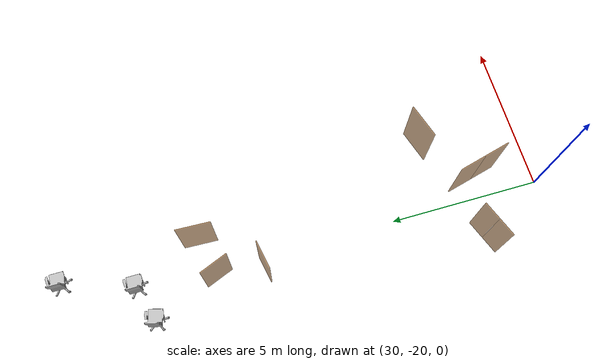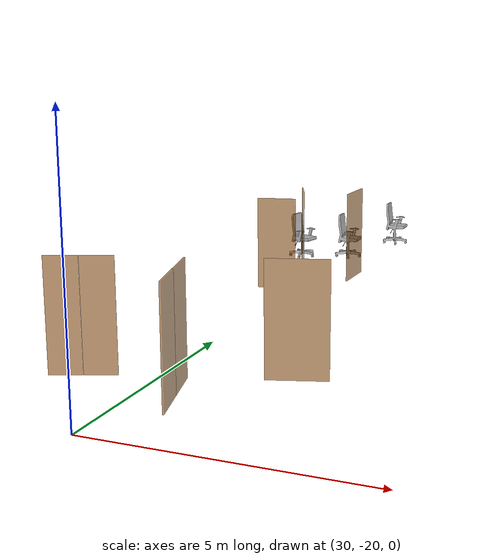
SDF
<sdf version="1.7">
 <world name="world">
  <include><uri>model://sun</uri></include>
  <include>
   <name>OpenRobotics/OfficeChairBlue_167</name>
   <uri>model://OfficeChairBlue</uri>
   <pose>29.051499461333144 -6.829994484467194 0.0 0 0 1.3253</pose>
   <static>True</static>
  </include>
  <include>
   <name>OpenRobotics/OfficeChairBlue_168</name>
   <uri>model://OfficeChairBlue</uri>
   <pose>30.268561291446492 -6.402953516787126 0.0 0 0 1.5708</pose>
   <static>True</static>
  </include>
  <include>
   <name>OpenRobotics/OfficeChairBlue_170</name>
   <uri>model://OfficeChairBlue</uri>
   <pose>31.01590762376081 -4.075565459606238 0.0 0 0 1.5708</pose>
   <static>True</static>
  </include>
  <model name="door_47">
   <pose>31.014774235547492 -8.705801255262191 0.0 0 0 -1.6078000247338753</pose>
   <link name="right">
    <pose>0 0 1.11 0 0 0</pose>
    <visual name="right_visual">
     <geometry><box><size>1.1008895852185248 0.03 2.2</size></box></geometry>
     <material><ambient>0.5 0.25 0 0.6</ambient><diffuse>0.5 0.25 0 0.6</diffuse></material>
    </visual>
    <collision name="right_collision">
     <geometry><box><size>1.1008895852185248 0.03 2.2</size></box></geometry>
     <surface><contact><collide_bitmask>0x02</collide_bitmask></contact></surface>
    </collision>
    <inertial>
     <mass>50.0</mass>
     <inertia><ixx>20.17041666666667</ixx><iyy>25.216491161844235</iyy><izz>5.053574495177565</izz></inertia>
    </inertial>
   </link>
   <joint name="right_joint" type="revolute">
    <parent>world</parent>
    <child>right</child>
    <axis><xyz>0 0 -1</xyz><limit><lower>0</lower><upper>1.57</upper></limit></axis>
    <pose>0.5554447926092624 0 0 0 0 0</pose>
   </joint>
   <plugin name="door" filename="libdoor.so">
    <v_max_door>0.5</v_max_door>
    <a_max_door>0.3</a_max_door>
    <a_nom_door>0.15</a_nom_door>
    <dx_min_door>0.01</dx_min_door>
    <f_max_door>500.0</f_max_door>
    <door name="door_47" type="SwingDoor" left_joint_name="empty_joint" right_joint_name="right_joint"/>
   </plugin>
  </model>
  <model name="door_48">
   <pose>29.74449243715645 -9.028176285329465 0.0 0 0 -1.1899322959066545</pose>
   <link name="right">
    <pose>0 0 1.11 0 0 0</pose>
    <visual name="right_visual">
     <geometry><box><size>0.9622381273252301 0.03 2.2</size></box></geometry>
     <material><ambient>0.5 0.25 0 0.6</ambient><diffuse>0.5 0.25 0 0.6</diffuse></material>
    </visual>
    <collision name="right_collision">
     <geometry><box><size>0.9622381273252301 0.03 2.2</size></box></geometry>
     <surface><contact><collide_bitmask>0x02</collide_bitmask></contact></surface>
    </collision>
    <inertial>
     <mass>50.0</mass>
     <inertia><ixx>20.17041666666667</ixx><iyy>24.024592556993195</iyy><izz>3.861675890326524</izz></inertia>
    </inertial>
   </link>
   <joint name="right_joint" type="revolute">
    <parent>world</parent>
    <child>right</child>
    <axis><xyz>0 0 -1</xyz><limit><lower>0</lower><upper>1.57</upper></limit></axis>
    <pose>0.48611906366261504 0 0 0 0 0</pose>
   </joint>
   <plugin name="door" filename="libdoor.so">
    <v_max_door>0.5</v_max_door>
    <a_max_door>0.3</a_max_door>
    <a_nom_door>0.15</a_nom_door>
    <dx_min_door>0.01</dx_min_door>
    <f_max_door>500.0</f_max_door>
    <door name="door_48" type="SwingDoor" left_joint_name="empty_joint" right_joint_name="right_joint"/>
   </plugin>
  </model>
  <model name="door_50">
   <pose>29.601636244529573 -10.505276793777425 0.0 0 0 -2.9530084478219623</pose>
   <link name="right">
    <pose>0 0 1.11 0 0 0</pose>
    <visual name="right_visual">
     <geometry><box><size>0.9178921724316444 0.03 2.2</size></box></geometry>
     <material><ambient>0.5 0.25 0 0.6</ambient><diffuse>0.5 0.25 0 0.6</diffuse></material>
    </visual>
    <collision name="right_collision">
     <geometry><box><size>0.9178921724316444 0.03 2.2</size></box></geometry>
     <surface><contact><collide_bitmask>0x02</collide_bitmask></contact></surface>
    </collision>
    <inertial>
     <mass>50.0</mass>
     <inertia><ixx>20.17041666666667</ixx><iyy>23.677191834213687</iyy><izz>3.514275167547016</izz></inertia>
    </inertial>
   </link>
   <joint name="right_joint" type="revolute">
    <parent>world</parent>
    <child>right</child>
    <axis><xyz>0 0 -1</xyz><limit><lower>0</lower><upper>1.57</upper></limit></axis>
    <pose>0.46394608621582223 0 0 0 0 0</pose>
   </joint>
   <plugin name="door" filename="libdoor.so">
    <v_max_door>0.5</v_max_door>
    <a_max_door>0.3</a_max_door>
    <a_nom_door>0.15</a_nom_door>
    <dx_min_door>0.01</dx_min_door>
    <f_max_door>500.0</f_max_door>
    <door name="door_50" type="SwingDoor" left_joint_name="empty_joint" right_joint_name="right_joint"/>
   </plugin>
  </model>
  <model name="double_hinged_11">
   <pose>28.69157478698105 -17.64995897956067 0.0 0 0 -2.773488763623743</pose>
   <link name="right">
    <pose>0.31763427600919436 0 1.11 0 0 0</pose>
    <visual name="right_visual">
     <geometry><box><size>0.6252685520183887 0.03 2.2</size></box></geometry>
     <material><ambient>0.5 0.25 0 0.6</ambient><diffuse>0.5 0.25 0 0.6</diffuse></material>
    </visual>
    <collision name="right_collision">
     <geometry><box><size>0.6252685520183887 0.03 2.2</size></box></geometry>
     <surface><contact><collide_bitmask>0x02</collide_bitmask></contact></surface>
    </collision>
    <inertial>
     <mass>50.0</mass>
     <inertia><ixx>20.17041666666667</ixx><iyy>21.795669842263223</iyy><izz>1.6327531755965523</izz></inertia>
    </inertial>
   </link>
   <joint name="right_joint" type="revolute">
    <parent>world</parent>
    <child>right</child>
    <axis><xyz>0 0 -1</xyz><limit><lower>0</lower><upper>1.57</upper></limit></axis>
    <pose>0.31763427600919436 0 0 0 0 0</pose>
   </joint>
   <link name="left">
    <pose>-0.31763427600919436 0 1.11 0 0 0</pose>
    <visual name="left_visual">
     <geometry><box><size>0.6252685520183887 0.03 2.2</size></box></geometry>
     <material><ambient>0.5 0.25 0 0.6</ambient><diffuse>0.5 0.25 0 0.6</diffuse></material>
    </visual>
    <collision name="left_collision">
     <geometry><box><size>0.6252685520183887 0.03 2.2</size></box></geometry>
     <surface><contact><collide_bitmask>0x02</collide_bitmask></contact></surface>
    </collision>
    <inertial>
     <mass>50.0</mass>
     <inertia><ixx>20.17041666666667</ixx><iyy>21.795669842263223</iyy><izz>1.6327531755965523</izz></inertia>
    </inertial>
   </link>
   <joint name="left_joint" type="revolute">
    <parent>world</parent>
    <child>left</child>
    <axis><xyz>0 0 -1</xyz><limit><lower>-1.57</lower><upper>0</upper></limit></axis>
    <pose>-0.31763427600919436 0 0 0 0 0</pose>
   </joint>
   <plugin name="door" filename="libdoor.so">
    <v_max_door>0.5</v_max_door>
    <a_max_door>0.3</a_max_door>
    <a_nom_door>0.15</a_nom_door>
    <dx_min_door>0.01</dx_min_door>
    <f_max_door>500.0</f_max_door>
    <door name="double_hinged_11" type="DoubleSwingDoor" left_joint_name="left_joint" right_joint_name="right_joint"/>
   </plugin>
  </model>
  <model name="double_hinged_13">
   <pose>30.704176587349075 -17.960852294249516 0.0 0 0 1.8225818322006657</pose>
   <link name="right">
    <pose>0.44247078614676494 0 1.11 0 0 0</pose>
    <visual name="right_visual">
     <geometry><box><size>0.8749415722935299 0.03 2.2</size></box></geometry>
     <material><ambient>0.5 0.25 0 0.6</ambient><diffuse>0.5 0.25 0 0.6</diffuse></material>
    </visual>
    <collision name="right_collision">
     <geometry><box><size>0.8749415722935299 0.03 2.2</size></box></geometry>
     <surface><contact><collide_bitmask>0x02</collide_bitmask></contact></surface>
    </collision>
    <inertial>
     <mass>50.0</mass>
     <inertia><ixx>20.17041666666667</ixx><iyy>23.356344812197815</iyy><izz>3.1934281455311426</izz></inertia>
    </inertial>
   </link>
   <joint name="right_joint" type="revolute">
    <parent>world</parent>
    <child>right</child>
    <axis><xyz>0 0 -1</xyz><limit><lower>0</lower><upper>1.57</upper></limit></axis>
    <pose>0.44247078614676494 0 0 0 0 0</pose>
   </joint>
   <link name="left">
    <pose>-0.44247078614676494 0 1.11 0 0 0</pose>
    <visual name="left_visual">
     <geometry><box><size>0.8749415722935299 0.03 2.2</size></box></geometry>
     <material><ambient>0.5 0.25 0 0.6</ambient><diffuse>0.5 0.25 0 0.6</diffuse></material>
    </visual>
    <collision name="left_collision">
     <geometry><box><size>0.8749415722935299 0.03 2.2</size></box></geometry>
     <surface><contact><collide_bitmask>0x02</collide_bitmask></contact></surface>
    </collision>
    <inertial>
     <mass>50.0</mass>
     <inertia><ixx>20.17041666666667</ixx><iyy>23.356344812197815</iyy><izz>3.1934281455311426</izz></inertia>
    </inertial>
   </link>
   <joint name="left_joint" type="revolute">
    <parent>world</parent>
    <child>left</child>
    <axis><xyz>0 0 -1</xyz><limit><lower>-1.57</lower><upper>0</upper></limit></axis>
    <pose>-0.44247078614676494 0 0 0 0 0</pose>
   </joint>
   <plugin name="door" filename="libdoor.so">
    <v_max_door>0.5</v_max_door>
    <a_max_door>0.3</a_max_door>
    <a_nom_door>0.15</a_nom_door>
    <dx_min_door>0.01</dx_min_door>
    <f_max_door>500.0</f_max_door>
    <door name="double_hinged_13" type="DoubleSwingDoor" left_joint_name="left_joint" right_joint_name="right_joint"/>
   </plugin>
  </model>
  <model name="door_61">
   <pose>32.353010048989404 -16.518541876175675 0.0 0 0 -2.838707785214822</pose>
   <link name="right">
    <pose>0 0 1.11 0 0 0</pose>
    <visual name="right_visual">
     <geometry><box><size>1.158028461127037 0.03 2.2</size></box></geometry>
     <material><ambient>0.5 0.25 0 0.6</ambient><diffuse>0.5 0.25 0 0.6</diffuse></material>
    </visual>
    <collision name="right_collision">
     <geometry><box><size>1.158028461127037 0.03 2.2</size></box></geometry>
     <surface><contact><collide_bitmask>0x02</collide_bitmask></contact></surface>
    </collision>
    <inertial>
     <mass>50.0</mass>
     <inertia><ixx>20.17041666666667</ixx><iyy>25.754291319917726</iyy><izz>5.591374653251056</izz></inertia>
    </inertial>
   </link>
   <joint name="right_joint" type="revolute">
    <parent>world</parent>
    <child>right</child>
    <axis><xyz>0 0 -1</xyz><limit><lower>0</lower><upper>1.57</upper></limit></axis>
    <pose>0.5840142305635185 0 0 0 0 0</pose>
   </joint>
   <plugin name="door" filename="libdoor.so">
    <v_max_door>0.5</v_max_door>
    <a_max_door>0.3</a_max_door>
    <a_nom_door>0.15</a_nom_door>
    <dx_min_door>0.01</dx_min_door>
    <f_max_door>500.0</f_max_door>
    <door name="door_61" type="SwingDoor" left_joint_name="empty_joint" right_joint_name="right_joint"/>
   </plugin>
  </model>
 </world>
</sdf>
